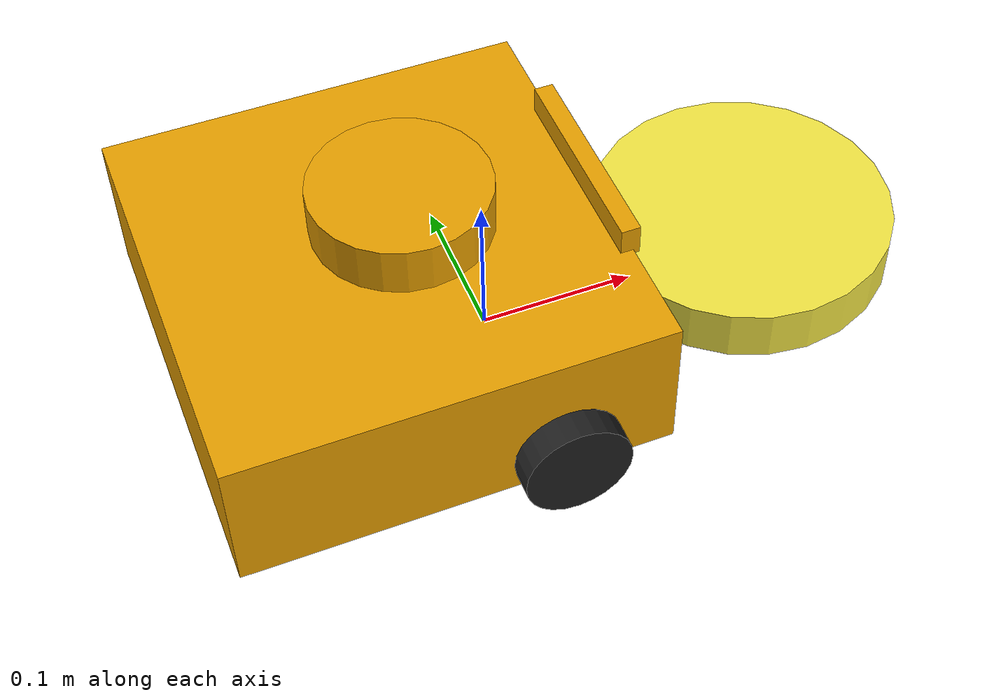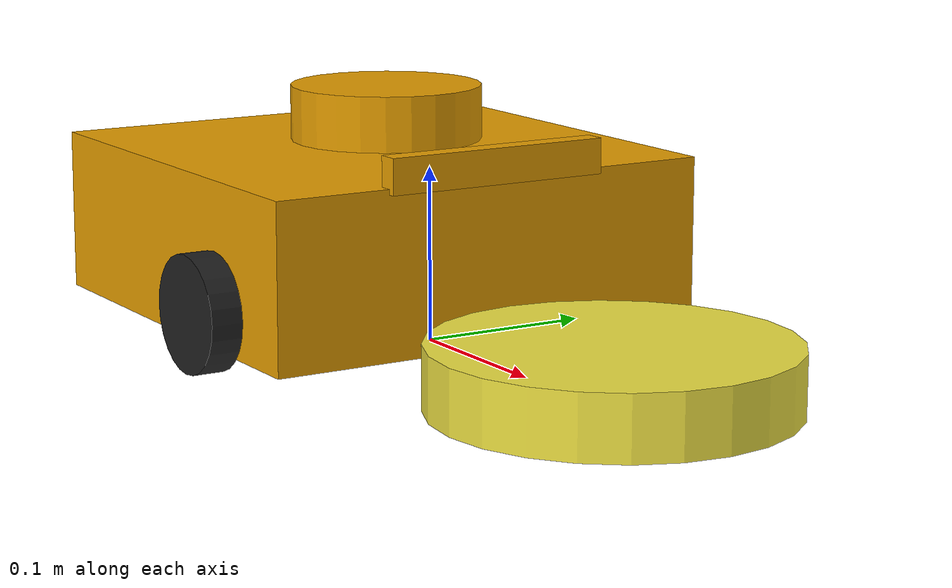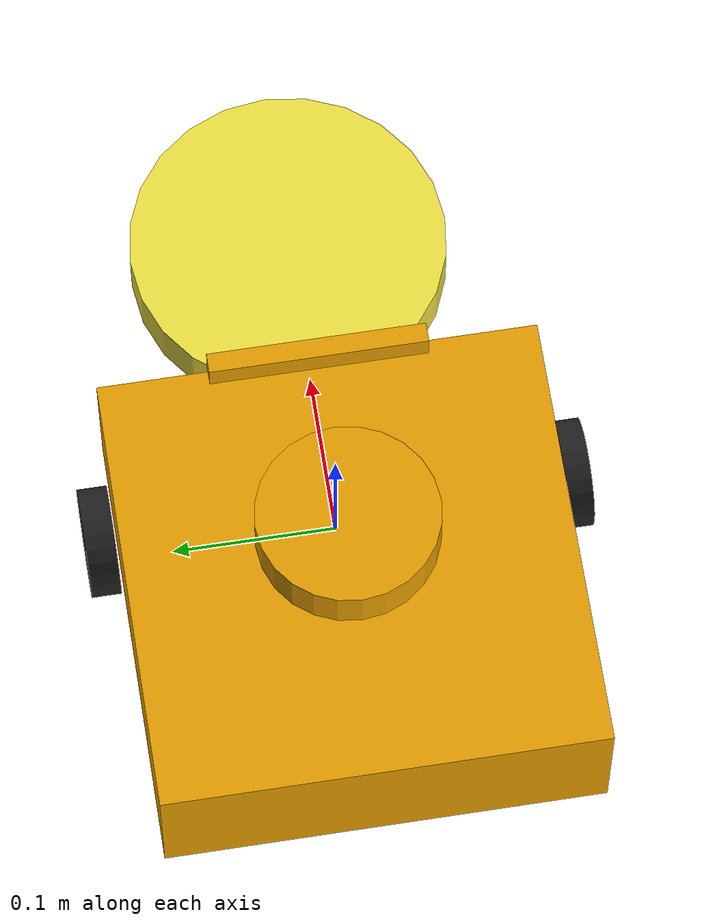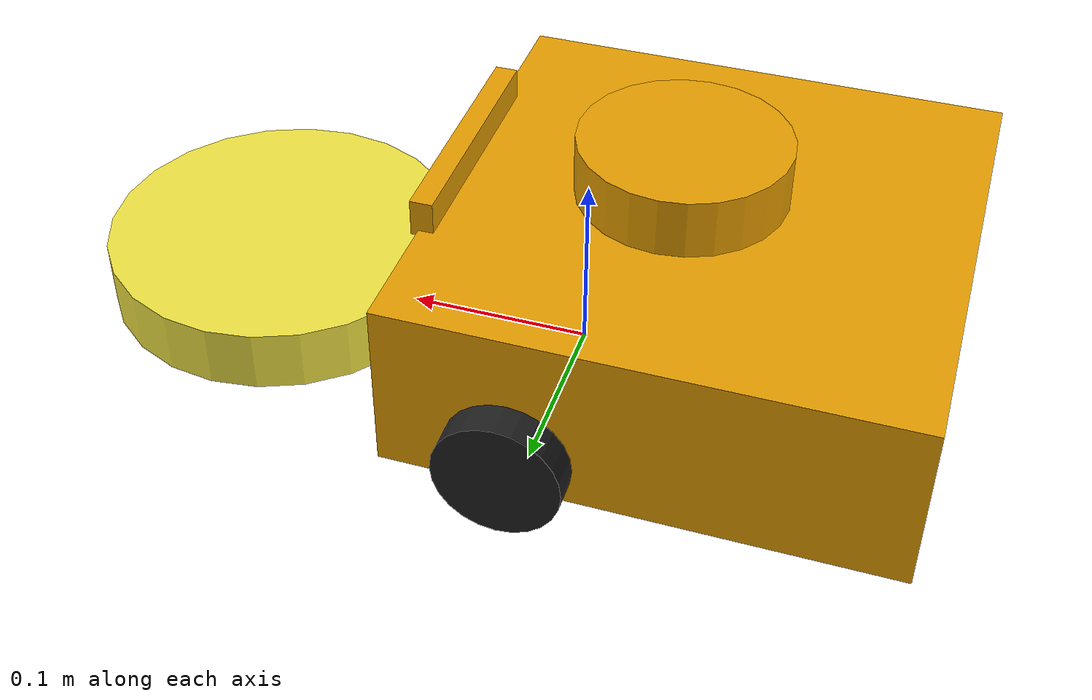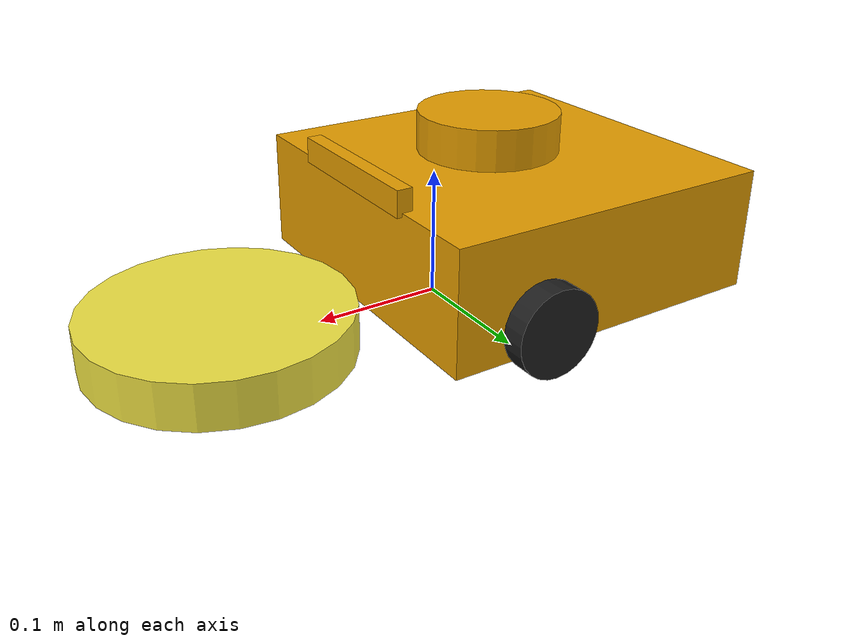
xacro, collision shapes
<?xml version="1.0" ?>
<robot name="turtlebot3_waffle_bowl" xmlns:xacro="http://ros.org/wiki/xacro">
  <xacro:include filename="$(find turtlebot3_description)/urdf/common_properties.xacro"/>
  <xacro:include filename="$(find turtlebot3_description)/urdf/turtlebot3_waffle_bowl.gazebo.xacro"/>

  <xacro:property name="r200_cam_rgb_px" value="0.005"/>
  <xacro:property name="r200_cam_rgb_py" value="0.018"/>
  <xacro:property name="r200_cam_rgb_pz" value="0.013"/>
  <xacro:property name="r200_cam_depth_offset" value="0.01"/>

  <joint name="base_footprint_JOINT_0" type="fixed">
    <parent link="base_footprint"/>
    <child link="bowl_link"/>
    <origin rpy="0  0  0" xyz="0.17949  0.00155  0.00057"/>
    <axis xyz="0  0  0"/>
    <limit effort="0" lower="0" upper="0" velocity="0"/>
  </joint>

  <joint name="wheel_left_joint" type="revolute">
    <parent link="base_footprint"/>
    <child link="wheel_left_link"/>
    <origin rpy="-1.57  0    0" xyz="0       0.14399  0.033"/>
    <axis xyz="0  0  1"/>
    <limit effort="-1.0" lower="-1e+16" upper="1e+16" velocity="-1.0"/>
  </joint>
  <joint name="wheel_right_joint" type="revolute">
    <parent link="base_footprint"/>
    <child link="wheel_right_link"/>
    <origin rpy="-1.57  0    0" xyz="0      -0.14399  0.033"/>
    <axis xyz="0  0  1"/>
    <limit effort="-1.0" lower="-1e+16" upper="1e+16" velocity="-1.0"/>
  </joint>
  <link name="base_footprint">
    <inertial>
      <mass value="1.49691"/>
      <origin rpy="0  0  0" xyz="-0.00605  0       0.01926"/>
      <inertia ixx="0.0133097" ixy="0" ixz="0.00091065" iyy="0.0139133" iyz="0" izz="0.018379"/>
    </inertial>
    <collision name="base_footprint_fixed_joint_lump__caster_back_right_link_collision_3">
      <origin rpy="-1.57  0    0" xyz="-0.177   -0.06399  0.005"/>
      <geometry>
        <box size="0.03 0.009 0.02"/>
      </geometry>
    </collision>
    <collision name="base_footprint_fixed_joint_lump__base_scan_collision_4">
      <origin rpy="0  0  0" xyz="-0.049   0      0.1255"/>
      <geometry>
        <cylinder length="0.0315" radius="0.055"/>
      </geometry>
    </collision>
    <collision name="base_footprint_fixed_joint_lump__base_link_collision">
      <origin rpy="0  0  0" xyz="-0.064  0     0.057"/>
      <geometry>
        <box size="0.266 0.266 0.094"/>
      </geometry>
    </collision>
    <collision name="base_footprint_fixed_joint_lump__caster_back_left_link_collision_2">
      <origin rpy="-1.57  0    0" xyz="-0.177  0.064  0.005"/>
      <geometry>
        <box size="0.03 0.009 0.02"/>
      </geometry>
    </collision>
    <collision name="base_footprint_fixed_joint_lump__camera_link_collision_1">
      <origin rpy="0  0  0" xyz="0.067  0     0.111"/>
      <geometry>
        <box size="0.012 0.132 0.02"/>
      </geometry>
    </collision>
    <visual name="base_footprint_fixed_joint_lump__base_scan_visual_2">
      <origin rpy="0  0  0" xyz="-0.064  0     0.132"/>
      <geometry>
        <mesh filename="package://turtlebot3_description/meshes/sensors/lds.stl" scale="0.001 0.001 0.001"/>
      </geometry>
    </visual>
    <visual name="base_footprint_fixed_joint_lump__camera_link_visual_1">
      <origin rpy="1.57  0    1.57" xyz="0.064 -0.065  0.104"/>
      <geometry>
        <mesh filename="package://turtlebot3_description/meshes/sensors/r200.dae" scale="1 1 1"/>
      </geometry>
    </visual>
    <visual name="base_footprint_fixed_joint_lump__base_link_visual">
      <origin rpy="0  0  0" xyz="-0.064  0     0.01"/>
      <geometry>
        <mesh filename="package://turtlebot3_description/meshes/wheels/waffle_base.stl" scale="0.001 0.001 0.001"/>
      </geometry>
    </visual>
  </link>
  <link name="wheel_left_link">
    <inertial>
      <mass value="0.0284989"/>
      <origin rpy="0  0  0" xyz="0  0  0"/>
      <inertia ixx="1.11756e-05" ixy="-4.23698e-11" ixz="-5.93817e-09" iyy="1.11924e-05" iyz="-1.44001e-11" izz="2.07126e-05"/>
    </inertial>
    <collision name="wheel_left_link_collision">
      <origin rpy="0  0  0" xyz="0  0  0"/>
      <geometry>
        <cylinder length="0.018" radius="0.033"/>
      </geometry>
    </collision>
    <visual name="wheel_left_link_visual">
      <origin rpy="1.57  0    0" xyz="0  0  0"/>
      <geometry>
        <mesh filename="package://turtlebot3_description/meshes/wheels/left_tire.stl" scale="0.001 0.001 0.001"/>
      </geometry>
    </visual>
  </link>
  <link name="wheel_right_link">
    <inertial>
      <mass value="0.0284989"/>
      <origin rpy="0  0  0" xyz="0  0  0"/>
      <inertia ixx="1.11756e-05" ixy="-4.23698e-11" ixz="-5.93817e-09" iyy="1.11924e-05" iyz="-1.44001e-11" izz="2.07126e-05"/>
    </inertial>
    <collision name="wheel_right_link_collision">
      <origin rpy="0  0  0" xyz="0  0  0"/>
      <geometry>
        <cylinder length="0.018" radius="0.033"/>
      </geometry>
    </collision>
    <visual name="wheel_right_link_visual">
      <origin rpy="1.57  0    0" xyz="0  0  0"/>
      <geometry>
        <mesh filename="package://turtlebot3_description/meshes/wheels/right_tire.stl" scale="0.001 0.001 0.001"/>
      </geometry>
    </visual>
  </link>
  <link name="bowl_link">
    <inertial>
      <mass value="0.1"/>
      <origin rpy="0  0  0" xyz="0      0      0.0175"/>
      <inertia ixx="0.000250308" ixy="0" ixz="0" iyy="0.000250308" iyz="0" izz="0.0004802"/>
    </inertial>
    <collision name="collision">
      <origin rpy="0  0  0" xyz="0      0      0.0175"/>
      <geometry>
        <cylinder length="0.035" radius="0.098"/>
      </geometry>
    </collision>
    <visual name="visual">
      <origin rpy="0  0  0" xyz="0  0  0"/>
      <geometry>
        <mesh filename="model://bowl/meshes/bowl.dae" scale="1.0 1.0 1.0"/>
      </geometry>
    </visual>
  </link>
</robot>
